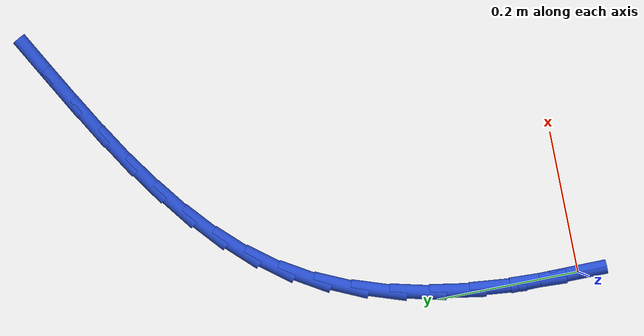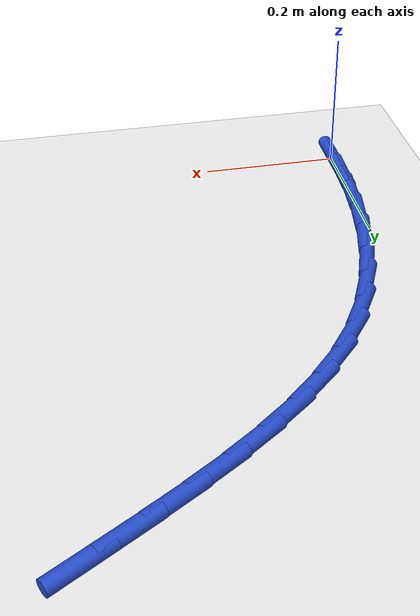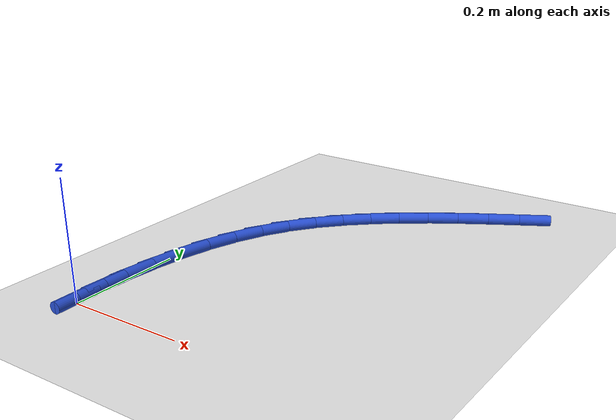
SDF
<sdf version="1.6">
 <world name="default">
  <model name="ground_plane">
   <static>1</static>
   <link name="link">
    <collision name="collision">
     <geometry><plane><normal>0 0 1</normal><size>100 100</size></plane></geometry>
     <surface><friction><ode><mu>100</mu><mu2>50</mu2></ode></friction></surface>
    </collision>
    <visual name="visual">
     <cast_shadows>0</cast_shadows>
     <geometry><plane><normal>0 0 1</normal><size>100 100</size></plane></geometry>
     <material>
      <script><uri>file://media/materials/scripts/gazebo.material</uri><name>Gazebo/WhiteGlow</name></script>
     </material>
    </visual>
   </link>
  </model>
  <model name="line">
   <link name="link_0">
    <pose>-1.734723475976807e-18 5.551115123125783e-17 0.01 0 1.57 -1.5661314822219803</pose>
    <collision name="collision">
     <geometry><cylinder><radius>0.01</radius><length>0.08</length></cylinder></geometry>
    </collision>
    <visual name="visual">
     <material>
      <script><name>Gazebo/Blue</name><uri>file://media/materials/scripts/gazebo.material</uri></script>
     </material>
     <geometry><cylinder><radius>0.01</radius><length>0.08</length></cylinder></geometry>
    </visual>
   </link>
   <link name="link_1">
    <pose>-0.0002671970481219554 0.05727845929362262 0.01 0 1.57 1.526995578784829</pose>
    <collision name="collision">
     <geometry><cylinder><radius>0.01</radius><length>0.08</length></cylinder></geometry>
    </collision>
    <visual name="visual">
     <material>
      <script><name>Gazebo/Blue</name><uri>file://media/materials/scripts/gazebo.material</uri></script>
     </material>
     <geometry><cylinder><radius>0.01</radius><length>0.08</length></cylinder></geometry>
    </visual>
   </link>
   <link name="link_2">
    <pose>0.002229847736398396 0.1142511784565556 0.01 0 1.57 1.4708896036431018</pose>
    <collision name="collision">
     <geometry><cylinder><radius>0.01</radius><length>0.08</length></cylinder></geometry>
    </collision>
    <visual name="visual">
     <material>
      <script><name>Gazebo/Blue</name><uri>file://media/materials/scripts/gazebo.material</uri></script>
     </material>
     <geometry><cylinder><radius>0.01</radius><length>0.08</length></cylinder></geometry>
    </visual>
   </link>
   <link name="link_3">
    <pose>0.007858735817602821 0.17040503333965376 0.01 0 1.57 1.4058010821259437</pose>
    <collision name="collision">
     <geometry><cylinder><radius>0.01</radius><length>0.08</length></cylinder></geometry>
    </collision>
    <visual name="visual">
     <material>
      <script><name>Gazebo/Blue</name><uri>file://media/materials/scripts/gazebo.material</uri></script>
     </material>
     <geometry><cylinder><radius>0.01</radius><length>0.08</length></cylinder></geometry>
    </visual>
   </link>
   <link name="link_4">
    <pose>0.016987068659533096 0.22522689979377192 0.01 0 1.57 1.3302428327054945</pose>
    <collision name="collision">
     <geometry><cylinder><radius>0.01</radius><length>0.08</length></cylinder></geometry>
    </collision>
    <visual name="visual">
     <material>
      <script><name>Gazebo/Blue</name><uri>file://media/materials/scripts/gazebo.material</uri></script>
     </material>
     <geometry><cylinder><radius>0.01</radius><length>0.08</length></cylinder></geometry>
    </visual>
   </link>
   <link name="link_5">
    <pose>0.02998244772623098 0.2782036536697649 0.01 0 1.57 1.2427084562064419</pose>
    <collision name="collision">
     <geometry><cylinder><radius>0.01</radius><length>0.08</length></cylinder></geometry>
    </collision>
    <visual name="visual">
     <material>
      <script><name>Gazebo/Blue</name><uri>file://media/materials/scripts/gazebo.material</uri></script>
     </material>
     <geometry><cylinder><radius>0.01</radius><length>0.08</length></cylinder></geometry>
    </visual>
   </link>
   <link name="link_6">
    <pose>0.047212474481738306 0.32882217081848764 0.01 0 1.57 1.1419316082793176</pose>
    <collision name="collision">
     <geometry><cylinder><radius>0.01</radius><length>0.08</length></cylinder></geometry>
    </collision>
    <visual name="visual">
     <material>
      <script><name>Gazebo/Blue</name><uri>file://media/materials/scripts/gazebo.material</uri></script>
     </material>
     <geometry><cylinder><radius>0.01</radius><length>0.08</length></cylinder></geometry>
    </visual>
   </link>
   <link name="link_7">
    <pose>0.06904475039009678 0.37656932709079466 0.01 0 1.57 1.0274769942199709</pose>
    <collision name="collision">
     <geometry><cylinder><radius>0.01</radius><length>0.08</length></cylinder></geometry>
    </collision>
    <visual name="visual">
     <material>
      <script><name>Gazebo/Blue</name><uri>file://media/materials/scripts/gazebo.material</uri></script>
     </material>
     <geometry><cylinder><radius>0.01</radius><length>0.08</length></cylinder></geometry>
    </visual>
   </link>
   <link name="link_8">
    <pose>0.0958410073056266 0.4209376154864044 0.01 0 1.57 0.9097125452312507</pose>
    <collision name="collision">
     <geometry><cylinder><radius>0.01</radius><length>0.08</length></cylinder></geometry>
    </collision>
    <visual name="visual">
     <material>
      <script><name>Gazebo/Blue</name><uri>file://media/materials/scripts/gazebo.material</uri></script>
     </material>
     <geometry><cylinder><radius>0.01</radius><length>0.08</length></cylinder></geometry>
    </visual>
   </link>
   <link name="link_9">
    <pose>0.12759987050115218 0.4617670178191727 0.01 0 1.57 0.8060424598398853</pose>
    <collision name="collision">
     <geometry><cylinder><radius>0.01</radius><length>0.08</length></cylinder></geometry>
    </collision>
    <visual name="visual">
     <material>
      <script><name>Gazebo/Blue</name><uri>file://media/materials/scripts/gazebo.material</uri></script>
     </material>
     <geometry><cylinder><radius>0.01</radius><length>0.08</length></cylinder></geometry>
    </visual>
   </link>
   <link name="link_10">
    <pose>0.16375077368198546 0.4994422256738341 0.01 0 1.57 0.7191271859253768</pose>
    <collision name="collision">
     <geometry><cylinder><radius>0.01</radius><length>0.08</length></cylinder></geometry>
    </collision>
    <visual name="visual">
     <material>
      <script><name>Gazebo/Blue</name><uri>file://media/materials/scripts/gazebo.material</uri></script>
     </material>
     <geometry><cylinder><radius>0.01</radius><length>0.08</length></cylinder></geometry>
    </visual>
   </link>
   <link name="link_11">
    <pose>0.2036734349284112 0.5343955079153645 0.01 0 1.57 0.6487994551378756</pose>
    <collision name="collision">
     <geometry><cylinder><radius>0.01</radius><length>0.08</length></cylinder></geometry>
    </collision>
    <visual name="visual">
     <material>
      <script><name>Gazebo/Blue</name><uri>file://media/materials/scripts/gazebo.material</uri></script>
     </material>
     <geometry><cylinder><radius>0.01</radius><length>0.08</length></cylinder></geometry>
    </visual>
   </link>
   <link name="link_12">
    <pose>0.24674757232071393 0.5670591334087391 0.01 0 1.57 0.5940906143464005</pose>
    <collision name="collision">
     <geometry><cylinder><radius>0.01</radius><length>0.08</length></cylinder></geometry>
    </collision>
    <visual name="visual">
     <material>
      <script><name>Gazebo/Blue</name><uri>file://media/materials/scripts/gazebo.material</uri></script>
     </material>
     <geometry><cylinder><radius>0.01</radius><length>0.08</length></cylinder></geometry>
    </visual>
   </link>
   <link name="link_13">
    <pose>0.29235290393917834 0.5978653710189334 0.01 0 1.57 0.5537946082802397</pose>
    <collision name="collision">
     <geometry><cylinder><radius>0.01</radius><length>0.08</length></cylinder></geometry>
    </collision>
    <visual name="visual">
     <material>
      <script><name>Gazebo/Blue</name><uri>file://media/materials/scripts/gazebo.material</uri></script>
     </material>
     <geometry><cylinder><radius>0.01</radius><length>0.08</length></cylinder></geometry>
    </visual>
   </link>
   <link name="link_14">
    <pose>0.33986914786408895 0.627246489610923 0.01 0 1.57 0.5268137422496977</pose>
    <collision name="collision">
     <geometry><cylinder><radius>0.01</radius><length>0.08</length></cylinder></geometry>
    </collision>
    <visual name="visual">
     <material>
      <script><name>Gazebo/Blue</name><uri>file://media/materials/scripts/gazebo.material</uri></script>
     </material>
     <geometry><cylinder><radius>0.01</radius><length>0.08</length></cylinder></geometry>
    </visual>
   </link>
   <link name="link_15">
    <pose>0.38867602217573044 0.6556347580496831 0.01 0 1.57 0.5123395501668344</pose>
    <collision name="collision">
     <geometry><cylinder><radius>0.01</radius><length>0.08</length></cylinder></geometry>
    </collision>
    <visual name="visual">
     <material>
      <script><name>Gazebo/Blue</name><uri>file://media/materials/scripts/gazebo.material</uri></script>
     </material>
     <geometry><cylinder><radius>0.01</radius><length>0.08</length></cylinder></geometry>
    </visual>
   </link>
   <link name="link_16">
    <pose>0.4381532449543873 0.6834624452001891 0.01 0 1.57 0.5099362327819195</pose>
    <collision name="collision">
     <geometry><cylinder><radius>0.01</radius><length>0.08</length></cylinder></geometry>
    </collision>
    <visual name="visual">
     <material>
      <script><name>Gazebo/Blue</name><uri>file://media/materials/scripts/gazebo.material</uri></script>
     </material>
     <geometry><cylinder><radius>0.01</radius><length>0.08</length></cylinder></geometry>
    </visual>
   </link>
   <link name="link_150">
    <pose>-1.734723475976807e-17 1.1102230246251565e-16 0.01 0 1.57 -1.5649010287495408</pose>
    <collision name="collision">
     <geometry><cylinder><radius>0.01</radius><length>0.08</length></cylinder></geometry>
    </collision>
    <visual name="visual">
     <material>
      <script><name>Gazebo/Blue</name><uri>file://media/materials/scripts/gazebo.material</uri></script>
     </material>
     <geometry><cylinder><radius>0.01</radius><length>0.08</length></cylinder></geometry>
    </visual>
   </link>
   <link name="link_151">
    <pose>-0.0003378368836188701 0.057305494518217544 0.01 0 1.57 -1.5649010287495404</pose>
    <collision name="collision">
     <geometry><cylinder><radius>0.01</radius><length>0.08</length></cylinder></geometry>
    </collision>
    <visual name="visual">
     <material>
      <script><name>Gazebo/Blue</name><uri>file://media/materials/scripts/gazebo.material</uri></script>
     </material>
     <geometry><cylinder><radius>0.01</radius><length>0.08</length></cylinder></geometry>
    </visual>
   </link>
  </model>
 </world>
</sdf>
